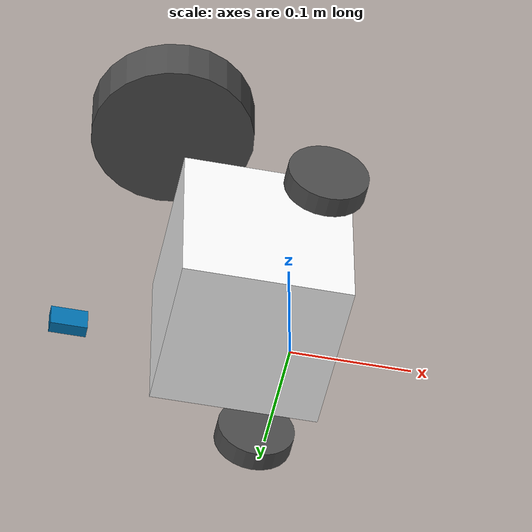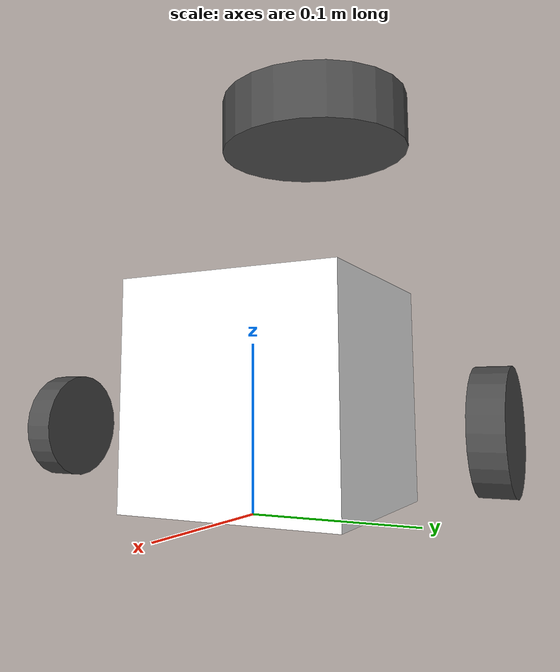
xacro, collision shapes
<?xml version="1.0" ?>
<robot name="AR_bot" xmlns:xacro="http://ros.org/wiki/xacro">
    <xacro:include filename="$(find ar_description)/urdf/common_properties.xacro"/>

    <link name="base_footprint"/>

    <joint name="base_joint" type="fixed">
        <parent link="base_footprint"/>
        <child link="base_link"/>
        <origin xyz="0.0 0.0 0.0" rpy="0 0 0"/>
    </joint>

    <link name="base_link">
        <visual>
            <origin xyz="0.1 0.18 0.0" rpy="0 0 ${M_PI/2}"/>
            <geometry>
                <mesh filename="package://ar_description/meshes/base/Main_Frame.stl" scale="0.001 0.001 0.001"/>
            </geometry>
            <material name="white"/>
        </visual>

        <collision>
            <origin xyz="-0.032 0 0.070" rpy="0 0 0"/>
            <geometry>
                <box size="0.140 0.140 0.140"/>
            </geometry>
        </collision>

        <inertial>
            <origin xyz="-0.032 0 0" rpy="0 0 0"/>
            <mass value="1"/>
            <inertia ixx="0.01" ixy="0.0" ixz="0.0"
                     iyy="0.01" iyz="0.0"
                     izz="0.01"/>
        </inertial>
    </link>

    <joint name="wheel_left_joint" type="continuous">
        <parent link="base_link"/>
        <child link="wheel_left_link"/>
	<origin xyz="0 -0.14 0.05" rpy="${-M_PI*0.5} 0 0"/>
        <axis xyz="0 0 1"/>
    </joint>

    <link name="wheel_left_link">
        <visual>
	    <origin xyz="0 0 0" rpy="${M_PI*0.5} 0 0"/>
	    <geometry>
                <mesh filename="package://ar_description/meshes/wheel/Tlwheel.stl" scale="0.0013 0.0007 0.0013"/>
            </geometry>
            <material name="dark"/>
        </visual>

        <collision>
            <origin xyz="0 0 0" rpy="0 0 0"/>
            <geometry>
                <cylinder length="0.018" radius="0.033"/>
            </geometry>
        </collision>

        <inertial>
            <origin xyz="0 0 0"/>
            <mass value="0.01"/>
            <inertia ixx="0.001" ixy="0.0" ixz="0.0"
                      iyy="0.001" iyz="0.0"
                      izz="0.001"/>
        </inertial>
    </link>

    <joint name="wheel_right_joint" type="continuous">
        <parent link="base_link"/>
        <child link="wheel_right_link"/>
	<origin xyz="0 0.14 0.05" rpy="${-M_PI*0.5} 0 0"/>
        <axis xyz="0 0 1"/>
    </joint>

    <link name="wheel_right_link">
        <visual>
	    <origin xyz="0 0 0" rpy="${M_PI*0.5} 0 0"/>
            <geometry>
                <mesh filename="package://ar_description/meshes/wheel/Trwheel.stl" scale="0.0013 0.0007 0.0013"/>
            </geometry>
            <material name="dark"/>
        </visual>

        <collision>
            <origin xyz="0 0 0" rpy="0 0 0"/>
            <geometry>
                <cylinder length="0.018" radius="0.033"/>
            </geometry>
        </collision>

        <inertial>
            <origin xyz="0 0 0"/>
            <mass value="0.01"/>
            <inertia ixx="0.001" ixy="0.0" ixz="0.0"
                     iyy="0.001" iyz="0.0"
                     izz="0.001"/>
        </inertial>
    </link>

    <joint name="caster_back_joint" type="fixed">
        <parent link="base_link"/>
        <child link="caster_back_link"/>
        <origin xyz="-0.181 0 -0.004" rpy="0 0 0"/>
    </joint>

    <link name="caster_back_link">
        <collision>
            <origin xyz="0 0 0" rpy="0 0 0"/>
            <geometry>
                <box size="0.030 0.010 0.020"/>
            </geometry>
        </collision>

        <inertial>
            <origin xyz="0 0 0"/>
            <mass value="0.01"/>
            <inertia ixx="0.001" ixy="0.0" ixz="0.0"
                     iyy="0.001" iyz="0.0"
                     izz="0.001"/>
        </inertial>
    </link>

    <joint name="imu_joint" type="fixed">
        <parent link="base_link"/>
        <child link="imu_link"/>
        <origin xyz="0 0 0.09" rpy="0 0 0"/>
    </joint>

    <link name="imu_link"/>

    <joint name="scan_joint" type="fixed">
        <parent link="base_link"/>
        <child link="base_scan"/>
        <origin xyz="-0.1 0 0.273" rpy="0 0 0"/>
    </joint>

    <link name="base_scan">
        <visual>
            <origin xyz="0 0 0.0" rpy="0 0 0"/>
            <geometry>
                <mesh filename="package://ar_description/meshes/sensor/lds.stl" scale="0.001 0.001 0.001"/>
            </geometry>
            <material name="dark"/>
        </visual>

        <collision>
            <origin xyz="0 0 0" rpy="0 0 0"/>
            <geometry>
                <cylinder length="0.0408" radius="0.070"/>
            </geometry>
        </collision>

        <inertial>
            <mass value="0.01"/>
            <origin xyz="0 0 0"/>
            <inertia ixx="0.001" ixy="0.0" ixz="0.0"
                     iyy="0.001" iyz="0.0"
                     izz="0.001"/>
        </inertial>
    </link>

</robot>

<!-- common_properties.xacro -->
<robot name="xacro=_properties" xmlns:xacro="http://ros.org/wiki/xacro">
    <xacro:property name="M_PI" value="3.1415926535897931" />

    <!-- Init color -->
    <material name="black">
        <color rgba="0.0 0.0 0.0 1.0"/>
    </material>

    <material name="dark">
        <color rgba="0.3 0.3 0.3 1.0"/>
    </material>

    <material name="light_black">
        <color rgba="0.4 0.4 0.4 1.0"/>
    </material>

    <material name="blue">
        <color rgba="0.0 0.0 0.8 1.0"/>
    </material>

    <material name="green">
        <color rgba="0.0 0.8 0.0 1.0"/>
    </material>

    <material name="grey">
        <color rgba="0.5 0.5 0.5 1.0"/>
    </material>

    <material name="orange">
        <color rgba="${255/255} ${108/255} ${10/255} 1.0"/>
    </material>

    <material name="brown">
        <color rgba="${222/255} ${207/255} ${195/255} 1.0"/>
    </material>

    <material name="red">
        <color rgba="0.8 0.0 0.0 1.0"/>
    </material>

    <material name="white">
        <color rgba="1.0 1.0 1.0 1.0"/>
    </material>

</robot>
